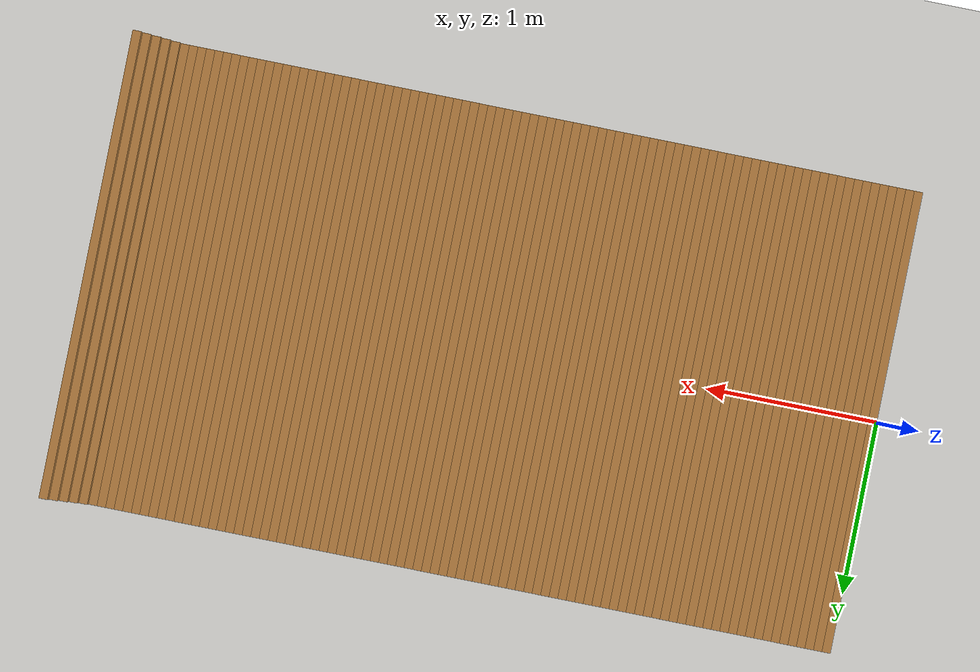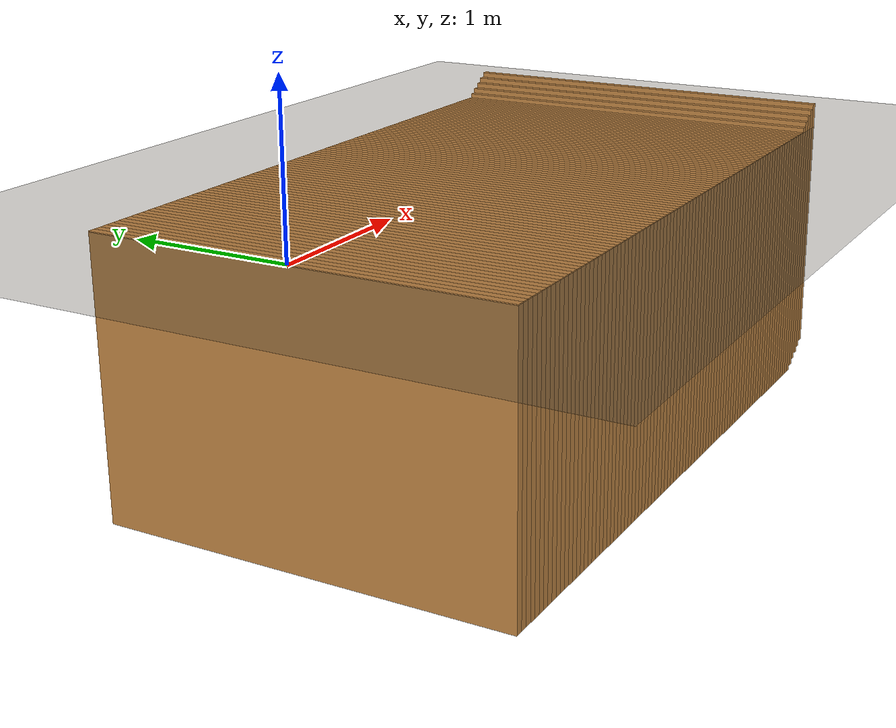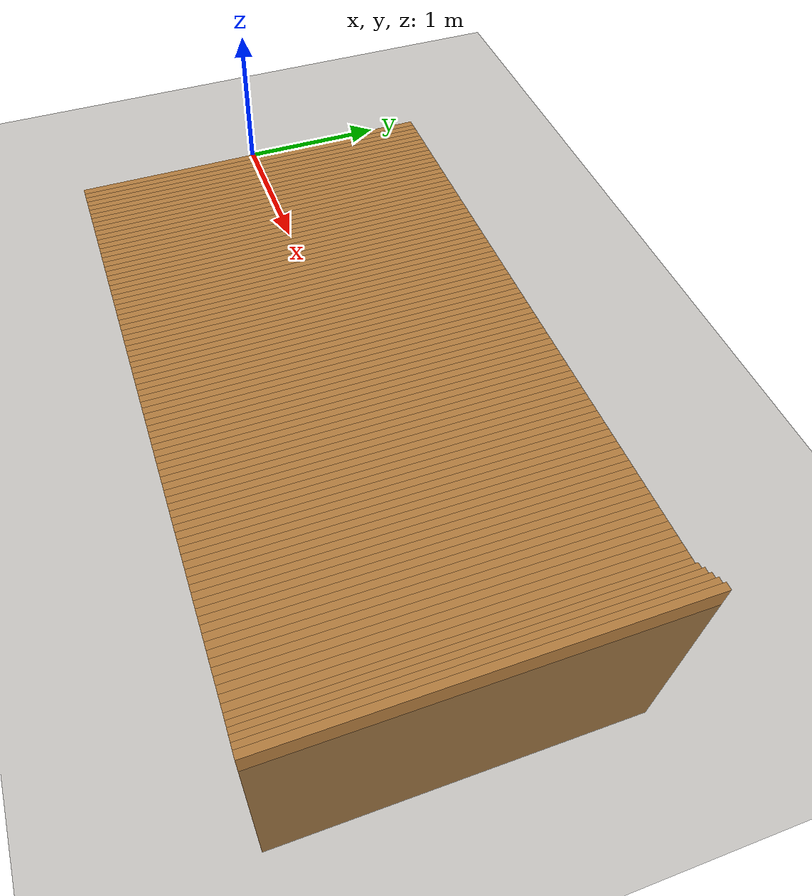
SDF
<sdf version="1.10">
 <world name="loader_soil_slice">
  <model name="rigid_ground">
   <static>true</static>
   <link name="link">
    <collision name="collision">
     <geometry><plane><normal>0 0 1</normal><size>80 40</size></plane></geometry>
     <surface><contact><collide_bitmask>0x01</collide_bitmask></contact></surface>
    </collision>
    <visual name="visual">
     <geometry><plane><normal>0 0 1</normal><size>80 40</size></plane></geometry>
     <material><diffuse>0.30 0.27 0.22 1</diffuse></material>
    </visual>
   </link>
  </model>
  <model name="soil_column_000">
   <static>true</static>
   <pose>0.025000 0 -0.900000 0 0 0</pose>
   <link name="link">
    <visual name="visual">
     <geometry><box><size>0.050000 2.700000 1.800000</size></box></geometry>
     <material><ambient>0.58 0.38 0.18 1</ambient><diffuse>0.72 0.50 0.25 1</diffuse></material>
    </visual>
   </link>
  </model>
  <model name="soil_column_001">
   <static>true</static>
   <pose>0.075000 0 -0.900000 0 0 0</pose>
   <link name="link">
    <visual name="visual">
     <geometry><box><size>0.050000 2.700000 1.800000</size></box></geometry>
     <material><ambient>0.58 0.38 0.18 1</ambient><diffuse>0.72 0.50 0.25 1</diffuse></material>
    </visual>
   </link>
  </model>
  <model name="soil_column_002">
   <static>true</static>
   <pose>0.125000 0 -0.900000 0 0 0</pose>
   <link name="link">
    <visual name="visual">
     <geometry><box><size>0.050000 2.700000 1.800000</size></box></geometry>
     <material><ambient>0.58 0.38 0.18 1</ambient><diffuse>0.72 0.50 0.25 1</diffuse></material>
    </visual>
   </link>
  </model>
  <model name="soil_column_003">
   <static>true</static>
   <pose>0.175000 0 -0.900000 0 0 0</pose>
   <link name="link">
    <visual name="visual">
     <geometry><box><size>0.050000 2.700000 1.800000</size></box></geometry>
     <material><ambient>0.58 0.38 0.18 1</ambient><diffuse>0.72 0.50 0.25 1</diffuse></material>
    </visual>
   </link>
  </model>
  <model name="soil_column_004">
   <static>true</static>
   <pose>0.225000 0 -0.900000 0 0 0</pose>
   <link name="link">
    <visual name="visual">
     <geometry><box><size>0.050000 2.700000 1.800000</size></box></geometry>
     <material><ambient>0.58 0.38 0.18 1</ambient><diffuse>0.72 0.50 0.25 1</diffuse></material>
    </visual>
   </link>
  </model>
  <model name="soil_column_005">
   <static>true</static>
   <pose>0.275000 0 -0.900000 0 0 0</pose>
   <link name="link">
    <visual name="visual">
     <geometry><box><size>0.050000 2.700000 1.800000</size></box></geometry>
     <material><ambient>0.58 0.38 0.18 1</ambient><diffuse>0.72 0.50 0.25 1</diffuse></material>
    </visual>
   </link>
  </model>
  <model name="soil_column_006">
   <static>true</static>
   <pose>0.325000 0 -0.900000 0 0 0</pose>
   <link name="link">
    <visual name="visual">
     <geometry><box><size>0.050000 2.700000 1.800000</size></box></geometry>
     <material><ambient>0.58 0.38 0.18 1</ambient><diffuse>0.72 0.50 0.25 1</diffuse></material>
    </visual>
   </link>
  </model>
  <model name="soil_column_007">
   <static>true</static>
   <pose>0.375000 0 -0.900000 0 0 0</pose>
   <link name="link">
    <visual name="visual">
     <geometry><box><size>0.050000 2.700000 1.800000</size></box></geometry>
     <material><ambient>0.58 0.38 0.18 1</ambient><diffuse>0.72 0.50 0.25 1</diffuse></material>
    </visual>
   </link>
  </model>
  <model name="soil_column_008">
   <static>true</static>
   <pose>0.425000 0 -0.900000 0 0 0</pose>
   <link name="link">
    <visual name="visual">
     <geometry><box><size>0.050000 2.700000 1.800000</size></box></geometry>
     <material><ambient>0.58 0.38 0.18 1</ambient><diffuse>0.72 0.50 0.25 1</diffuse></material>
    </visual>
   </link>
  </model>
  <model name="soil_column_009">
   <static>true</static>
   <pose>0.475000 0 -0.900000 0 0 0</pose>
   <link name="link">
    <visual name="visual">
     <geometry><box><size>0.050000 2.700000 1.800000</size></box></geometry>
     <material><ambient>0.58 0.38 0.18 1</ambient><diffuse>0.72 0.50 0.25 1</diffuse></material>
    </visual>
   </link>
  </model>
  <model name="soil_column_010">
   <static>true</static>
   <pose>0.525000 0 -0.900000 0 0 0</pose>
   <link name="link">
    <visual name="visual">
     <geometry><box><size>0.050000 2.700000 1.800000</size></box></geometry>
     <material><ambient>0.58 0.38 0.18 1</ambient><diffuse>0.72 0.50 0.25 1</diffuse></material>
    </visual>
   </link>
  </model>
  <model name="soil_column_011">
   <static>true</static>
   <pose>0.575000 0 -0.900000 0 0 0</pose>
   <link name="link">
    <visual name="visual">
     <geometry><box><size>0.050000 2.700000 1.800000</size></box></geometry>
     <material><ambient>0.58 0.38 0.18 1</ambient><diffuse>0.72 0.50 0.25 1</diffuse></material>
    </visual>
   </link>
  </model>
  <model name="soil_column_012">
   <static>true</static>
   <pose>0.625000 0 -0.900000 0 0 0</pose>
   <link name="link">
    <visual name="visual">
     <geometry><box><size>0.050000 2.700000 1.800000</size></box></geometry>
     <material><ambient>0.58 0.38 0.18 1</ambient><diffuse>0.72 0.50 0.25 1</diffuse></material>
    </visual>
   </link>
  </model>
  <model name="soil_column_013">
   <static>true</static>
   <pose>0.675000 0 -0.900000 0 0 0</pose>
   <link name="link">
    <visual name="visual">
     <geometry><box><size>0.050000 2.700000 1.800000</size></box></geometry>
     <material><ambient>0.58 0.38 0.18 1</ambient><diffuse>0.72 0.50 0.25 1</diffuse></material>
    </visual>
   </link>
  </model>
  <model name="soil_column_014">
   <static>true</static>
   <pose>0.725000 0 -0.900000 0 0 0</pose>
   <link name="link">
    <visual name="visual">
     <geometry><box><size>0.050000 2.700000 1.800000</size></box></geometry>
     <material><ambient>0.58 0.38 0.18 1</ambient><diffuse>0.72 0.50 0.25 1</diffuse></material>
    </visual>
   </link>
  </model>
  <model name="soil_column_015">
   <static>true</static>
   <pose>0.775000 0 -0.900000 0 0 0</pose>
   <link name="link">
    <visual name="visual">
     <geometry><box><size>0.050000 2.700000 1.800000</size></box></geometry>
     <material><ambient>0.58 0.38 0.18 1</ambient><diffuse>0.72 0.50 0.25 1</diffuse></material>
    </visual>
   </link>
  </model>
  <model name="soil_column_016">
   <static>true</static>
   <pose>0.825000 0 -0.900000 0 0 0</pose>
   <link name="link">
    <visual name="visual">
     <geometry><box><size>0.050000 2.700000 1.800000</size></box></geometry>
     <material><ambient>0.58 0.38 0.18 1</ambient><diffuse>0.72 0.50 0.25 1</diffuse></material>
    </visual>
   </link>
  </model>
  <model name="soil_column_017">
   <static>true</static>
   <pose>0.875000 0 -0.900000 0 0 0</pose>
   <link name="link">
    <visual name="visual">
     <geometry><box><size>0.050000 2.700000 1.800000</size></box></geometry>
     <material><ambient>0.58 0.38 0.18 1</ambient><diffuse>0.72 0.50 0.25 1</diffuse></material>
    </visual>
   </link>
  </model>
  <model name="soil_column_018">
   <static>true</static>
   <pose>0.925000 0 -0.900000 0 0 0</pose>
   <link name="link">
    <visual name="visual">
     <geometry><box><size>0.050000 2.700000 1.800000</size></box></geometry>
     <material><ambient>0.58 0.38 0.18 1</ambient><diffuse>0.72 0.50 0.25 1</diffuse></material>
    </visual>
   </link>
  </model>
  <model name="soil_column_019">
   <static>true</static>
   <pose>0.975000 0 -0.900000 0 0 0</pose>
   <link name="link">
    <visual name="visual">
     <geometry><box><size>0.050000 2.700000 1.800000</size></box></geometry>
     <material><ambient>0.58 0.38 0.18 1</ambient><diffuse>0.72 0.50 0.25 1</diffuse></material>
    </visual>
   </link>
  </model>
  <model name="soil_column_020">
   <static>true</static>
   <pose>1.025000 0 -0.900000 0 0 0</pose>
   <link name="link">
    <visual name="visual">
     <geometry><box><size>0.050000 2.700000 1.800000</size></box></geometry>
     <material><ambient>0.58 0.38 0.18 1</ambient><diffuse>0.72 0.50 0.25 1</diffuse></material>
    </visual>
   </link>
  </model>
  <model name="soil_column_021">
   <static>true</static>
   <pose>1.075000 0 -0.900000 0 0 0</pose>
   <link name="link">
    <visual name="visual">
     <geometry><box><size>0.050000 2.700000 1.800000</size></box></geometry>
     <material><ambient>0.58 0.38 0.18 1</ambient><diffuse>0.72 0.50 0.25 1</diffuse></material>
    </visual>
   </link>
  </model>
  <model name="soil_column_022">
   <static>true</static>
   <pose>1.125000 0 -0.900000 0 0 0</pose>
   <link name="link">
    <visual name="visual">
     <geometry><box><size>0.050000 2.700000 1.800000</size></box></geometry>
     <material><ambient>0.58 0.38 0.18 1</ambient><diffuse>0.72 0.50 0.25 1</diffuse></material>
    </visual>
   </link>
  </model>
  <model name="soil_column_023">
   <static>true</static>
   <pose>1.175000 0 -0.900000 0 0 0</pose>
   <link name="link">
    <visual name="visual">
     <geometry><box><size>0.050000 2.700000 1.800000</size></box></geometry>
     <material><ambient>0.58 0.38 0.18 1</ambient><diffuse>0.72 0.50 0.25 1</diffuse></material>
    </visual>
   </link>
  </model>
  <model name="soil_column_024">
   <static>true</static>
   <pose>1.225000 0 -0.900000 0 0 0</pose>
   <link name="link">
    <visual name="visual">
     <geometry><box><size>0.050000 2.700000 1.800000</size></box></geometry>
     <material><ambient>0.58 0.38 0.18 1</ambient><diffuse>0.72 0.50 0.25 1</diffuse></material>
    </visual>
   </link>
  </model>
  <model name="soil_column_025">
   <static>true</static>
   <pose>1.275000 0 -0.900000 0 0 0</pose>
   <link name="link">
    <visual name="visual">
     <geometry><box><size>0.050000 2.700000 1.800000</size></box></geometry>
     <material><ambient>0.58 0.38 0.18 1</ambient><diffuse>0.72 0.50 0.25 1</diffuse></material>
    </visual>
   </link>
  </model>
  <model name="soil_column_026">
   <static>true</static>
   <pose>1.325000 0 -0.900000 0 0 0</pose>
   <link name="link">
    <visual name="visual">
     <geometry><box><size>0.050000 2.700000 1.800000</size></box></geometry>
     <material><ambient>0.58 0.38 0.18 1</ambient><diffuse>0.72 0.50 0.25 1</diffuse></material>
    </visual>
   </link>
  </model>
  <model name="soil_column_027">
   <static>true</static>
   <pose>1.375000 0 -0.900000 0 0 0</pose>
   <link name="link">
    <visual name="visual">
     <geometry><box><size>0.050000 2.700000 1.800000</size></box></geometry>
     <material><ambient>0.58 0.38 0.18 1</ambient><diffuse>0.72 0.50 0.25 1</diffuse></material>
    </visual>
   </link>
  </model>
  <model name="soil_column_028">
   <static>true</static>
   <pose>1.425000 0 -0.900000 0 0 0</pose>
   <link name="link">
    <visual name="visual">
     <geometry><box><size>0.050000 2.700000 1.800000</size></box></geometry>
     <material><ambient>0.58 0.38 0.18 1</ambient><diffuse>0.72 0.50 0.25 1</diffuse></material>
    </visual>
   </link>
  </model>
  <model name="soil_column_029">
   <static>true</static>
   <pose>1.475000 0 -0.900000 0 0 0</pose>
   <link name="link">
    <visual name="visual">
     <geometry><box><size>0.050000 2.700000 1.800000</size></box></geometry>
     <material><ambient>0.58 0.38 0.18 1</ambient><diffuse>0.72 0.50 0.25 1</diffuse></material>
    </visual>
   </link>
  </model>
  <model name="soil_column_030">
   <static>true</static>
   <pose>1.525000 0 -0.900000 0 0 0</pose>
   <link name="link">
    <visual name="visual">
     <geometry><box><size>0.050000 2.700000 1.800000</size></box></geometry>
     <material><ambient>0.58 0.38 0.18 1</ambient><diffuse>0.72 0.50 0.25 1</diffuse></material>
    </visual>
   </link>
  </model>
  <model name="soil_column_031">
   <static>true</static>
   <pose>1.575000 0 -0.900000 0 0 0</pose>
   <link name="link">
    <visual name="visual">
     <geometry><box><size>0.050000 2.700000 1.800000</size></box></geometry>
     <material><ambient>0.58 0.38 0.18 1</ambient><diffuse>0.72 0.50 0.25 1</diffuse></material>
    </visual>
   </link>
  </model>
  <model name="soil_column_032">
   <static>true</static>
   <pose>1.625000 0 -0.900000 0 0 0</pose>
   <link name="link">
    <visual name="visual">
     <geometry><box><size>0.050000 2.700000 1.800000</size></box></geometry>
     <material><ambient>0.58 0.38 0.18 1</ambient><diffuse>0.72 0.50 0.25 1</diffuse></material>
    </visual>
   </link>
  </model>
  <model name="soil_column_033">
   <static>true</static>
   <pose>1.675000 0 -0.900000 0 0 0</pose>
   <link name="link">
    <visual name="visual">
     <geometry><box><size>0.050000 2.700000 1.800000</size></box></geometry>
     <material><ambient>0.58 0.38 0.18 1</ambient><diffuse>0.72 0.50 0.25 1</diffuse></material>
    </visual>
   </link>
  </model>
  <model name="soil_column_034">
   <static>true</static>
   <pose>1.725000 0 -0.900000 0 0 0</pose>
   <link name="link">
    <visual name="visual">
     <geometry><box><size>0.050000 2.700000 1.800000</size></box></geometry>
     <material><ambient>0.58 0.38 0.18 1</ambient><diffuse>0.72 0.50 0.25 1</diffuse></material>
    </visual>
   </link>
  </model>
  <model name="soil_column_035">
   <static>true</static>
   <pose>1.775000 0 -0.900000 0 0 0</pose>
   <link name="link">
    <visual name="visual">
     <geometry><box><size>0.050000 2.700000 1.800000</size></box></geometry>
     <material><ambient>0.58 0.38 0.18 1</ambient><diffuse>0.72 0.50 0.25 1</diffuse></material>
    </visual>
   </link>
  </model>
  <model name="soil_column_036">
   <static>true</static>
   <pose>1.825000 0 -0.900000 0 0 0</pose>
   <link name="link">
    <visual name="visual">
     <geometry><box><size>0.050000 2.700000 1.800000</size></box></geometry>
     <material><ambient>0.58 0.38 0.18 1</ambient><diffuse>0.72 0.50 0.25 1</diffuse></material>
    </visual>
   </link>
  </model>
  <model name="soil_column_037">
   <static>true</static>
   <pose>1.875000 0 -0.900000 0 0 0</pose>
   <link name="link">
    <visual name="visual">
     <geometry><box><size>0.050000 2.700000 1.800000</size></box></geometry>
     <material><ambient>0.58 0.38 0.18 1</ambient><diffuse>0.72 0.50 0.25 1</diffuse></material>
    </visual>
   </link>
  </model>
  <model name="soil_column_038">
   <static>true</static>
   <pose>1.925000 0 -0.900000 0 0 0</pose>
   <link name="link">
    <visual name="visual">
     <geometry><box><size>0.050000 2.700000 1.800000</size></box></geometry>
     <material><ambient>0.58 0.38 0.18 1</ambient><diffuse>0.72 0.50 0.25 1</diffuse></material>
    </visual>
   </link>
  </model>
  <model name="soil_column_039">
   <static>true</static>
   <pose>1.975000 0 -0.900000 0 0 0</pose>
   <link name="link">
    <visual name="visual">
     <geometry><box><size>0.050000 2.700000 1.800000</size></box></geometry>
     <material><ambient>0.58 0.38 0.18 1</ambient><diffuse>0.72 0.50 0.25 1</diffuse></material>
    </visual>
   </link>
  </model>
  <model name="soil_column_040">
   <static>true</static>
   <pose>2.025000 0 -0.900000 0 0 0</pose>
   <link name="link">
    <visual name="visual">
     <geometry><box><size>0.050000 2.700000 1.800000</size></box></geometry>
     <material><ambient>0.58 0.38 0.18 1</ambient><diffuse>0.72 0.50 0.25 1</diffuse></material>
    </visual>
   </link>
  </model>
  <model name="soil_column_041">
   <static>true</static>
   <pose>2.075000 0 -0.900000 0 0 0</pose>
   <link name="link">
    <visual name="visual">
     <geometry><box><size>0.050000 2.700000 1.800000</size></box></geometry>
     <material><ambient>0.58 0.38 0.18 1</ambient><diffuse>0.72 0.50 0.25 1</diffuse></material>
    </visual>
   </link>
  </model>
  <model name="soil_column_042">
   <static>true</static>
   <pose>2.125000 0 -0.900000 0 0 0</pose>
   <link name="link">
    <visual name="visual">
     <geometry><box><size>0.050000 2.700000 1.800000</size></box></geometry>
     <material><ambient>0.58 0.38 0.18 1</ambient><diffuse>0.72 0.50 0.25 1</diffuse></material>
    </visual>
   </link>
  </model>
  <model name="soil_column_043">
   <static>true</static>
   <pose>2.175000 0 -0.900000 0 0 0</pose>
   <link name="link">
    <visual name="visual">
     <geometry><box><size>0.050000 2.700000 1.800000</size></box></geometry>
     <material><ambient>0.58 0.38 0.18 1</ambient><diffuse>0.72 0.50 0.25 1</diffuse></material>
    </visual>
   </link>
  </model>
  <model name="soil_column_044">
   <static>true</static>
   <pose>2.225000 0 -0.900000 0 0 0</pose>
   <link name="link">
    <visual name="visual">
     <geometry><box><size>0.050000 2.700000 1.800000</size></box></geometry>
     <material><ambient>0.58 0.38 0.18 1</ambient><diffuse>0.72 0.50 0.25 1</diffuse></material>
    </visual>
   </link>
  </model>
  <model name="soil_column_045">
   <static>true</static>
   <pose>2.275000 0 -0.900000 0 0 0</pose>
   <link name="link">
    <visual name="visual">
     <geometry><box><size>0.050000 2.700000 1.800000</size></box></geometry>
     <material><ambient>0.58 0.38 0.18 1</ambient><diffuse>0.72 0.50 0.25 1</diffuse></material>
    </visual>
   </link>
  </model>
  <model name="soil_column_046">
   <static>true</static>
   <pose>2.325000 0 -0.900000 0 0 0</pose>
   <link name="link">
    <visual name="visual">
     <geometry><box><size>0.050000 2.700000 1.800000</size></box></geometry>
     <material><ambient>0.58 0.38 0.18 1</ambient><diffuse>0.72 0.50 0.25 1</diffuse></material>
    </visual>
   </link>
  </model>
  <model name="soil_column_047">
   <static>true</static>
   <pose>2.375000 0 -0.900000 0 0 0</pose>
   <link name="link">
    <visual name="visual">
     <geometry><box><size>0.050000 2.700000 1.800000</size></box></geometry>
     <material><ambient>0.58 0.38 0.18 1</ambient><diffuse>0.72 0.50 0.25 1</diffuse></material>
    </visual>
   </link>
  </model>
  <model name="soil_column_048">
   <static>true</static>
   <pose>2.425000 0 -0.900000 0 0 0</pose>
   <link name="link">
    <visual name="visual">
     <geometry><box><size>0.050000 2.700000 1.800000</size></box></geometry>
     <material><ambient>0.58 0.38 0.18 1</ambient><diffuse>0.72 0.50 0.25 1</diffuse></material>
    </visual>
   </link>
  </model>
  <model name="soil_column_049">
   <static>true</static>
   <pose>2.475000 0 -0.900000 0 0 0</pose>
   <link name="link">
    <visual name="visual">
     <geometry><box><size>0.050000 2.700000 1.800000</size></box></geometry>
     <material><ambient>0.58 0.38 0.18 1</ambient><diffuse>0.72 0.50 0.25 1</diffuse></material>
    </visual>
   </link>
  </model>
  <model name="soil_column_050">
   <static>true</static>
   <pose>2.525000 0 -0.900000 0 0 0</pose>
   <link name="link">
    <visual name="visual">
     <geometry><box><size>0.050000 2.700000 1.800000</size></box></geometry>
     <material><ambient>0.58 0.38 0.18 1</ambient><diffuse>0.72 0.50 0.25 1</diffuse></material>
    </visual>
   </link>
  </model>
  <model name="soil_column_051">
   <static>true</static>
   <pose>2.575000 0 -0.900000 0 0 0</pose>
   <link name="link">
    <visual name="visual">
     <geometry><box><size>0.050000 2.700000 1.800000</size></box></geometry>
     <material><ambient>0.58 0.38 0.18 1</ambient><diffuse>0.72 0.50 0.25 1</diffuse></material>
    </visual>
   </link>
  </model>
  <model name="soil_column_052">
   <static>true</static>
   <pose>2.625000 0 -0.900000 0 0 0</pose>
   <link name="link">
    <visual name="visual">
     <geometry><box><size>0.050000 2.700000 1.800000</size></box></geometry>
     <material><ambient>0.58 0.38 0.18 1</ambient><diffuse>0.72 0.50 0.25 1</diffuse></material>
    </visual>
   </link>
  </model>
  <model name="soil_column_053">
   <static>true</static>
   <pose>2.675000 0 -0.900000 0 0 0</pose>
   <link name="link">
    <visual name="visual">
     <geometry><box><size>0.050000 2.700000 1.800000</size></box></geometry>
     <material><ambient>0.58 0.38 0.18 1</ambient><diffuse>0.72 0.50 0.25 1</diffuse></material>
    </visual>
   </link>
  </model>
  <model name="soil_column_054">
   <static>true</static>
   <pose>2.725000 0 -0.900000 0 0 0</pose>
   <link name="link">
    <visual name="visual">
     <geometry><box><size>0.050000 2.700000 1.800000</size></box></geometry>
     <material><ambient>0.58 0.38 0.18 1</ambient><diffuse>0.72 0.50 0.25 1</diffuse></material>
    </visual>
   </link>
  </model>
  <model name="soil_column_055">
   <static>true</static>
   <pose>2.775000 0 -0.900000 0 0 0</pose>
   <link name="link">
    <visual name="visual">
     <geometry><box><size>0.050000 2.700000 1.800000</size></box></geometry>
     <material><ambient>0.58 0.38 0.18 1</ambient><diffuse>0.72 0.50 0.25 1</diffuse></material>
    </visual>
   </link>
  </model>
  <model name="soil_column_056">
   <static>true</static>
   <pose>2.825000 0 -0.900000 0 0 0</pose>
   <link name="link">
    <visual name="visual">
     <geometry><box><size>0.050000 2.700000 1.800000</size></box></geometry>
     <material><ambient>0.58 0.38 0.18 1</ambient><diffuse>0.72 0.50 0.25 1</diffuse></material>
    </visual>
   </link>
  </model>
  <model name="soil_column_057">
   <static>true</static>
   <pose>2.875000 0 -0.900000 0 0 0</pose>
   <link name="link">
    <visual name="visual">
     <geometry><box><size>0.050000 2.700000 1.800000</size></box></geometry>
     <material><ambient>0.58 0.38 0.18 1</ambient><diffuse>0.72 0.50 0.25 1</diffuse></material>
    </visual>
   </link>
  </model>
  <model name="soil_column_058">
   <static>true</static>
   <pose>2.925000 0 -0.900000 0 0 0</pose>
   <link name="link">
    <visual name="visual">
     <geometry><box><size>0.050000 2.700000 1.800000</size></box></geometry>
     <material><ambient>0.58 0.38 0.18 1</ambient><diffuse>0.72 0.50 0.25 1</diffuse></material>
    </visual>
   </link>
  </model>
  <model name="soil_column_059">
   <static>true</static>
   <pose>2.975000 0 -0.900000 0 0 0</pose>
   <link name="link">
    <visual name="visual">
     <geometry><box><size>0.050000 2.700000 1.800000</size></box></geometry>
     <material><ambient>0.58 0.38 0.18 1</ambient><diffuse>0.72 0.50 0.25 1</diffuse></material>
    </visual>
   </link>
  </model>
  <model name="soil_column_060">
   <static>true</static>
   <pose>3.025000 0 -0.900000 0 0 0</pose>
   <link name="link">
    <visual name="visual">
     <geometry><box><size>0.050000 2.700000 1.800000</size></box></geometry>
     <material><ambient>0.58 0.38 0.18 1</ambient><diffuse>0.72 0.50 0.25 1</diffuse></material>
    </visual>
   </link>
  </model>
  <model name="soil_column_061">
   <static>true</static>
   <pose>3.075000 0 -0.900000 0 0 0</pose>
   <link name="link">
    <visual name="visual">
     <geometry><box><size>0.050000 2.700000 1.800000</size></box></geometry>
     <material><ambient>0.58 0.38 0.18 1</ambient><diffuse>0.72 0.50 0.25 1</diffuse></material>
    </visual>
   </link>
  </model>
  <model name="soil_column_062">
   <static>true</static>
   <pose>3.125000 0 -0.900000 0 0 0</pose>
   <link name="link">
    <visual name="visual">
     <geometry><box><size>0.050000 2.700000 1.800000</size></box></geometry>
     <material><ambient>0.58 0.38 0.18 1</ambient><diffuse>0.72 0.50 0.25 1</diffuse></material>
    </visual>
   </link>
  </model>
  <model name="soil_column_063">
   <static>true</static>
   <pose>3.175000 0 -0.900000 0 0 0</pose>
   <link name="link">
    <visual name="visual">
     <geometry><box><size>0.050000 2.700000 1.800000</size></box></geometry>
     <material><ambient>0.58 0.38 0.18 1</ambient><diffuse>0.72 0.50 0.25 1</diffuse></material>
    </visual>
   </link>
  </model>
  <model name="soil_column_064">
   <static>true</static>
   <pose>3.225000 0 -0.900000 0 0 0</pose>
   <link name="link">
    <visual name="visual">
     <geometry><box><size>0.050000 2.700000 1.800000</size></box></geometry>
     <material><ambient>0.58 0.38 0.18 1</ambient><diffuse>0.72 0.50 0.25 1</diffuse></material>
    </visual>
   </link>
  </model>
  <model name="soil_column_065">
   <static>true</static>
   <pose>3.275000 0 -0.900000 0 0 0</pose>
   <link name="link">
    <visual name="visual">
     <geometry><box><size>0.050000 2.700000 1.800000</size></box></geometry>
     <material><ambient>0.58 0.38 0.18 1</ambient><diffuse>0.72 0.50 0.25 1</diffuse></material>
    </visual>
   </link>
  </model>
  <model name="soil_column_066">
   <static>true</static>
   <pose>3.325000 0 -0.900000 0 0 0</pose>
   <link name="link">
    <visual name="visual">
     <geometry><box><size>0.050000 2.700000 1.800000</size></box></geometry>
     <material><ambient>0.58 0.38 0.18 1</ambient><diffuse>0.72 0.50 0.25 1</diffuse></material>
    </visual>
   </link>
  </model>
  <model name="soil_column_067">
   <static>true</static>
   <pose>3.375000 0 -0.900000 0 0 0</pose>
   <link name="link">
    <visual name="visual">
     <geometry><box><size>0.050000 2.700000 1.800000</size></box></geometry>
     <material><ambient>0.58 0.38 0.18 1</ambient><diffuse>0.72 0.50 0.25 1</diffuse></material>
    </visual>
   </link>
  </model>
  <model name="soil_column_068">
   <static>true</static>
   <pose>3.425000 0 -0.900000 0 0 0</pose>
   <link name="link">
    <visual name="visual">
     <geometry><box><size>0.050000 2.700000 1.800000</size></box></geometry>
     <material><ambient>0.58 0.38 0.18 1</ambient><diffuse>0.72 0.50 0.25 1</diffuse></material>
    </visual>
   </link>
  </model>
  <model name="soil_column_069">
   <static>true</static>
   <pose>3.475000 0 -0.900000 0 0 0</pose>
   <link name="link">
    <visual name="visual">
     <geometry><box><size>0.050000 2.700000 1.800000</size></box></geometry>
     <material><ambient>0.58 0.38 0.18 1</ambient><diffuse>0.72 0.50 0.25 1</diffuse></material>
    </visual>
   </link>
  </model>
  <model name="soil_column_070">
   <static>true</static>
   <pose>3.525000 0 -0.900000 0 0 0</pose>
   <link name="link">
    <visual name="visual">
     <geometry><box><size>0.050000 2.700000 1.800000</size></box></geometry>
     <material><ambient>0.58 0.38 0.18 1</ambient><diffuse>0.72 0.50 0.25 1</diffuse></material>
    </visual>
   </link>
  </model>
  <model name="soil_column_071">
   <static>true</static>
   <pose>3.575000 0 -0.900000 0 0 0</pose>
   <link name="link">
    <visual name="visual">
     <geometry><box><size>0.050000 2.700000 1.800000</size></box></geometry>
     <material><ambient>0.58 0.38 0.18 1</ambient><diffuse>0.72 0.50 0.25 1</diffuse></material>
    </visual>
   </link>
  </model>
  <model name="soil_column_072">
   <static>true</static>
   <pose>3.625000 0 -0.900000 0 0 0</pose>
   <link name="link">
    <visual name="visual">
     <geometry><box><size>0.050000 2.700000 1.800000</size></box></geometry>
     <material><ambient>0.58 0.38 0.18 1</ambient><diffuse>0.72 0.50 0.25 1</diffuse></material>
    </visual>
   </link>
  </model>
  <model name="soil_column_073">
   <static>true</static>
   <pose>3.675000 0 -0.900000 0 0 0</pose>
   <link name="link">
    <visual name="visual">
     <geometry><box><size>0.050000 2.700000 1.800000</size></box></geometry>
     <material><ambient>0.58 0.38 0.18 1</ambient><diffuse>0.72 0.50 0.25 1</diffuse></material>
    </visual>
   </link>
  </model>
  <model name="soil_column_074">
   <static>true</static>
   <pose>3.725000 0 -0.900000 0 0 0</pose>
   <link name="link">
    <visual name="visual">
     <geometry><box><size>0.050000 2.700000 1.800000</size></box></geometry>
     <material><ambient>0.58 0.38 0.18 1</ambient><diffuse>0.72 0.50 0.25 1</diffuse></material>
    </visual>
   </link>
  </model>
  <model name="soil_column_075">
   <static>true</static>
   <pose>3.775000 0 -0.900000 0 0 0</pose>
   <link name="link">
    <visual name="visual">
     <geometry><box><size>0.050000 2.700000 1.800000</size></box></geometry>
     <material><ambient>0.58 0.38 0.18 1</ambient><diffuse>0.72 0.50 0.25 1</diffuse></material>
    </visual>
   </link>
  </model>
  <model name="soil_column_076">
   <static>true</static>
   <pose>3.825000 0 -0.900000 0 0 0</pose>
   <link name="link">
    <visual name="visual">
     <geometry><box><size>0.050000 2.700000 1.800000</size></box></geometry>
     <material><ambient>0.58 0.38 0.18 1</ambient><diffuse>0.72 0.50 0.25 1</diffuse></material>
    </visual>
   </link>
  </model>
  <model name="soil_column_077">
   <static>true</static>
   <pose>3.875000 0 -0.900000 0 0 0</pose>
   <link name="link">
    <visual name="visual">
     <geometry><box><size>0.050000 2.700000 1.800000</size></box></geometry>
     <material><ambient>0.58 0.38 0.18 1</ambient><diffuse>0.72 0.50 0.25 1</diffuse></material>
    </visual>
   </link>
  </model>
  <model name="soil_column_078">
   <static>true</static>
   <pose>3.925000 0 -0.900000 0 0 0</pose>
   <link name="link">
    <visual name="visual">
     <geometry><box><size>0.050000 2.700000 1.800000</size></box></geometry>
     <material><ambient>0.58 0.38 0.18 1</ambient><diffuse>0.72 0.50 0.25 1</diffuse></material>
    </visual>
   </link>
  </model>
  <model name="soil_column_079">
   <static>true</static>
   <pose>3.975000 0 -0.900000 0 0 0</pose>
   <link name="link">
    <visual name="visual">
     <geometry><box><size>0.050000 2.700000 1.800000</size></box></geometry>
     <material><ambient>0.58 0.38 0.18 1</ambient><diffuse>0.72 0.50 0.25 1</diffuse></material>
    </visual>
   </link>
  </model>
  <model name="soil_column_080">
   <static>true</static>
   <pose>4.025000 0 -0.900000 0 0 0</pose>
   <link name="link">
    <visual name="visual">
     <geometry><box><size>0.050000 2.700000 1.800000</size></box></geometry>
     <material><ambient>0.58 0.38 0.18 1</ambient><diffuse>0.72 0.50 0.25 1</diffuse></material>
    </visual>
   </link>
  </model>
  <model name="soil_column_081">
   <static>true</static>
   <pose>4.075000 0 -0.900000 0 0 0</pose>
   <link name="link">
    <visual name="visual">
     <geometry><box><size>0.050000 2.700000 1.800000</size></box></geometry>
     <material><ambient>0.58 0.38 0.18 1</ambient><diffuse>0.72 0.50 0.25 1</diffuse></material>
    </visual>
   </link>
  </model>
  <model name="soil_column_082">
   <static>true</static>
   <pose>4.125000 0 -0.900000 0 0 0</pose>
   <link name="link">
    <visual name="visual">
     <geometry><box><size>0.050000 2.700000 1.800000</size></box></geometry>
     <material><ambient>0.58 0.38 0.18 1</ambient><diffuse>0.72 0.50 0.25 1</diffuse></material>
    </visual>
   </link>
  </model>
  <model name="soil_column_083">
   <static>true</static>
   <pose>4.175000 0 -0.900000 0 0 0</pose>
   <link name="link">
    <visual name="visual">
     <geometry><box><size>0.050000 2.700000 1.800000</size></box></geometry>
     <material><ambient>0.58 0.38 0.18 1</ambient><diffuse>0.72 0.50 0.25 1</diffuse></material>
    </visual>
   </link>
  </model>
  <model name="soil_column_084">
   <static>true</static>
   <pose>4.225000 0 -0.900000 0 0 0</pose>
   <link name="link">
    <visual name="visual">
     <geometry><box><size>0.050000 2.700000 1.800000</size></box></geometry>
     <material><ambient>0.58 0.38 0.18 1</ambient><diffuse>0.72 0.50 0.25 1</diffuse></material>
    </visual>
   </link>
  </model>
  <model name="soil_column_085">
   <static>true</static>
   <pose>4.275000 0 -0.900000 0 0 0</pose>
   <link name="link">
    <visual name="visual">
     <geometry><box><size>0.050000 2.700000 1.800000</size></box></geometry>
     <material><ambient>0.58 0.38 0.18 1</ambient><diffuse>0.72 0.50 0.25 1</diffuse></material>
    </visual>
   </link>
  </model>
  <model name="soil_column_086">
   <static>true</static>
   <pose>4.325000 0 -0.900000 0 0 0</pose>
   <link name="link">
    <visual name="visual">
     <geometry><box><size>0.050000 2.700000 1.800000</size></box></geometry>
     <material><ambient>0.58 0.38 0.18 1</ambient><diffuse>0.72 0.50 0.25 1</diffuse></material>
    </visual>
   </link>
  </model>
  <model name="soil_column_087">
   <static>true</static>
   <pose>4.375000 0 -0.870585 0 0 0</pose>
   <link name="link">
    <visual name="visual">
     <geometry><box><size>0.050000 2.700000 1.800000</size></box></geometry>
     <material><ambient>0.58 0.38 0.18 1</ambient><diffuse>0.72 0.50 0.25 1</diffuse></material>
    </visual>
   </link>
  </model>
  <model name="soil_column_088">
   <static>true</static>
   <pose>4.425000 0 -0.836859 0 0 0</pose>
   <link name="link">
    <visual name="visual">
     <geometry><box><size>0.050000 2.700000 1.800000</size></box></geometry>
     <material><ambient>0.58 0.38 0.18 1</ambient><diffuse>0.72 0.50 0.25 1</diffuse></material>
    </visual>
   </link>
  </model>
  <model name="soil_column_089">
   <static>true</static>
   <pose>4.475000 0 -0.803134 0 0 0</pose>
   <link name="link">
    <visual name="visual">
     <geometry><box><size>0.050000 2.700000 1.800000</size></box></geometry>
     <material><ambient>0.58 0.38 0.18 1</ambient><diffuse>0.72 0.50 0.25 1</diffuse></material>
    </visual>
   </link>
  </model>
  <model name="soil_column_090">
   <static>true</static>
   <pose>4.525000 0 -0.769409 0 0 0</pose>
   <link name="link">
    <visual name="visual">
     <geometry><box><size>0.050000 2.700000 1.800000</size></box></geometry>
     <material><ambient>0.58 0.38 0.18 1</ambient><diffuse>0.72 0.50 0.25 1</diffuse></material>
    </visual>
   </link>
  </model>
  <model name="soil_column_091">
   <static>true</static>
   <pose>4.575000 0 -0.735683 0 0 0</pose>
   <link name="link">
    <visual name="visual">
     <geometry><box><size>0.050000 2.700000 1.800000</size></box></geometry>
     <material><ambient>0.58 0.38 0.18 1</ambient><diffuse>0.72 0.50 0.25 1</diffuse></material>
    </visual>
   </link>
  </model>
 </world>
</sdf>
